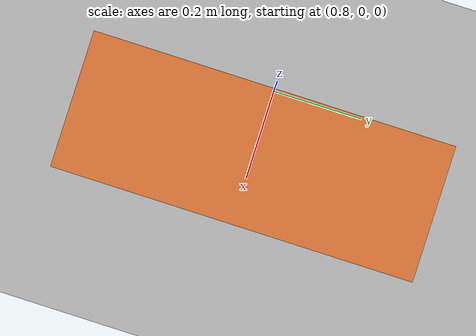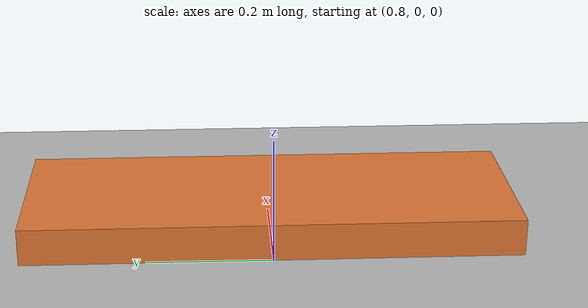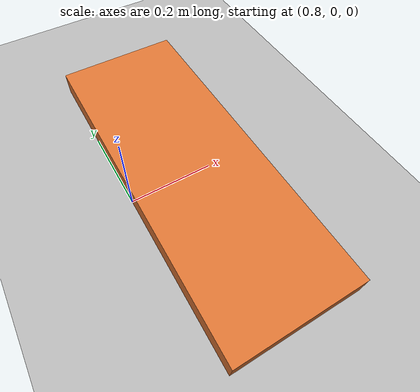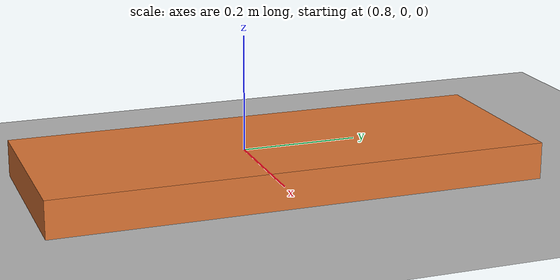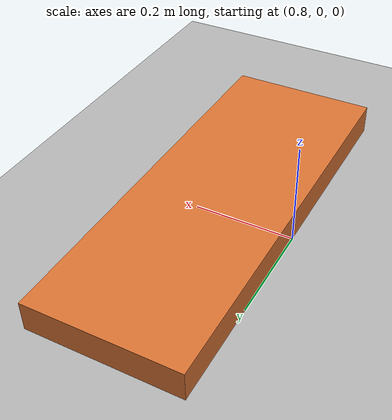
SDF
<?xml version="1.0"?>
<sdf version="1.9">
  <world name="dog2_step_block">
    <gravity>0 0 -9.81</gravity>
    <physics name="1ms" type="ignored">
      <max_step_size>0.001</max_step_size>
      <real_time_factor>1.0</real_time_factor>
      <real_time_update_rate>1000</real_time_update_rate>
    </physics>

    <plugin filename="gz-sim-physics-system" name="gz::sim::systems::Physics"/>
    <plugin filename="gz-sim-user-commands-system" name="gz::sim::systems::UserCommands"/>
    <plugin filename="gz-sim-scene-broadcaster-system" name="gz::sim::systems::SceneBroadcaster"/>
    <!-- Required by the foot contact sensors in obstacle trials. This
         publishes contact observations only; it does not change dynamics. -->
    <plugin
      filename="gz-sim-contact-system"
      name="gz::sim::systems::Contact"/>

    <light type="directional" name="sun">
      <cast_shadows>true</cast_shadows>
      <pose>0 0 10 0 0 0</pose>
      <diffuse>0.8 0.8 0.8 1</diffuse>
      <specular>0.2 0.2 0.2 1</specular>
      <attenuation>
        <range>1000</range>
        <constant>0.9</constant>
        <linear>0.01</linear>
        <quadratic>0.001</quadratic>
      </attenuation>
      <direction>-0.5 0.1 -0.9</direction>
    </light>

    <model name="ground_plane">
      <static>true</static>
      <link name="link">
        <collision name="collision">
          <geometry>
            <plane>
              <normal>0 0 1</normal>
              <size>200 200</size>
            </plane>
          </geometry>
          <surface>
            <friction>
              <ode>
                <mu>1.0</mu>
                <mu2>1.0</mu2>
              </ode>
            </friction>
          </surface>
        </collision>
        <visual name="visual">
          <geometry>
            <plane>
              <normal>0 0 1</normal>
              <size>200 200</size>
            </plane>
          </geometry>
          <material>
            <ambient>0.7 0.7 0.7 1</ambient>
            <diffuse>0.7 0.7 0.7 1</diffuse>
            <specular>0.1 0.1 0.1 1</specular>
          </material>
        </visual>
      </link>
    </model>

    <model name="step_block">
      <static>true</static>
      <pose>0.95 0 0.03 0 0 0</pose>
      <link name="link">
        <collision name="collision">
          <geometry>
            <box>
              <size>0.30 0.80 0.06</size>
            </box>
          </geometry>
          <surface>
            <friction>
              <ode>
                <mu>1.0</mu>
                <mu2>1.0</mu2>
              </ode>
            </friction>
          </surface>
        </collision>
        <visual name="visual">
          <geometry>
            <box>
              <size>0.30 0.80 0.06</size>
            </box>
          </geometry>
          <material>
            <ambient>0.85 0.45 0.20 1</ambient>
            <diffuse>0.85 0.45 0.20 1</diffuse>
            <specular>0.15 0.08 0.03 1</specular>
          </material>
        </visual>
      </link>
    </model>
  </world>
</sdf>
